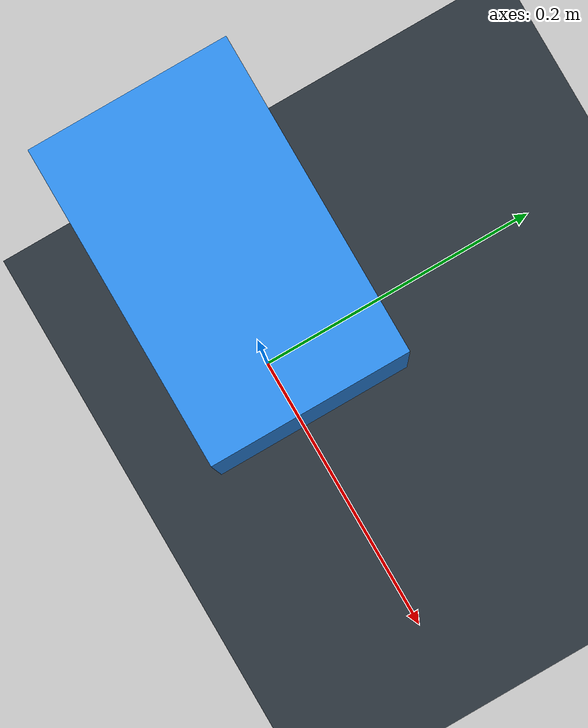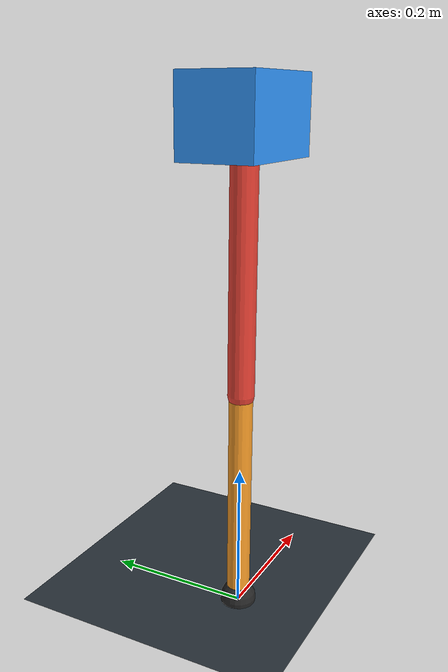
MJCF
<mujoco model="single_axis_two_bar">
  <compiler angle="radian" inertiafromgeom="true"/>
  <option timestep="0.001" integrator="implicitfast" gravity="0 0 -9.81"/>
  <default>
    <joint damping="0.08"/>
    <geom friction="1.2 0.01 0.0001" condim="3"/>
  </default>
  <worldbody>
    <geom name="floor" type="plane" size="5 5 0.1" rgba="0.18 0.22 0.25 1"/>
    <body name="carriage" pos="0 0 0.6605713407172633">
      <joint name="pole_slide" type="slide" axis="0 0 1"/>
      <geom name="payload" type="box" size="0.08 0.05 0.05" mass="3.1801833706755938" rgba="0.2 0.6 1 1"/>
      <body name="thigh" pos="0 0 0">
        <joint name="hip" type="hinge" axis="0 1 0"/>
        <geom name="thigh_link" type="capsule" fromto="0 0 0 0 0 -0.349900407924159" size="0.018" mass="0.24930866417192787" rgba="0.9 0.25 0.2 1"/>
        <body name="shank" pos="0 0 -0.349900407924159">
          <joint name="knee" type="hinge" axis="0 1 0"/>
          <geom name="shank_link" type="capsule" fromto="0 0 0 0 0 -0.3053277783822981" size="0.016" mass="0.2175500766480169" rgba="0.95 0.6 0.15 1"/>
          <geom name="foot" type="sphere" pos="0 0 -0.3053277783822981" size="0.025" mass="0.03" rgba="0.15 0.15 0.15 1"/>
          <site name="toe" pos="0 0 -0.3053277783822981" size="0.008"/>
        </body>
      </body>
    </body>
  </worldbody>
  <actuator>
    <motor name="hip_motor" joint="hip" ctrlrange="-48.267566710923546 48.267566710923546"/>
    <motor name="knee_motor" joint="knee" ctrlrange="-64.82598260509185 64.82598260509185"/>
  </actuator>
</mujoco>
